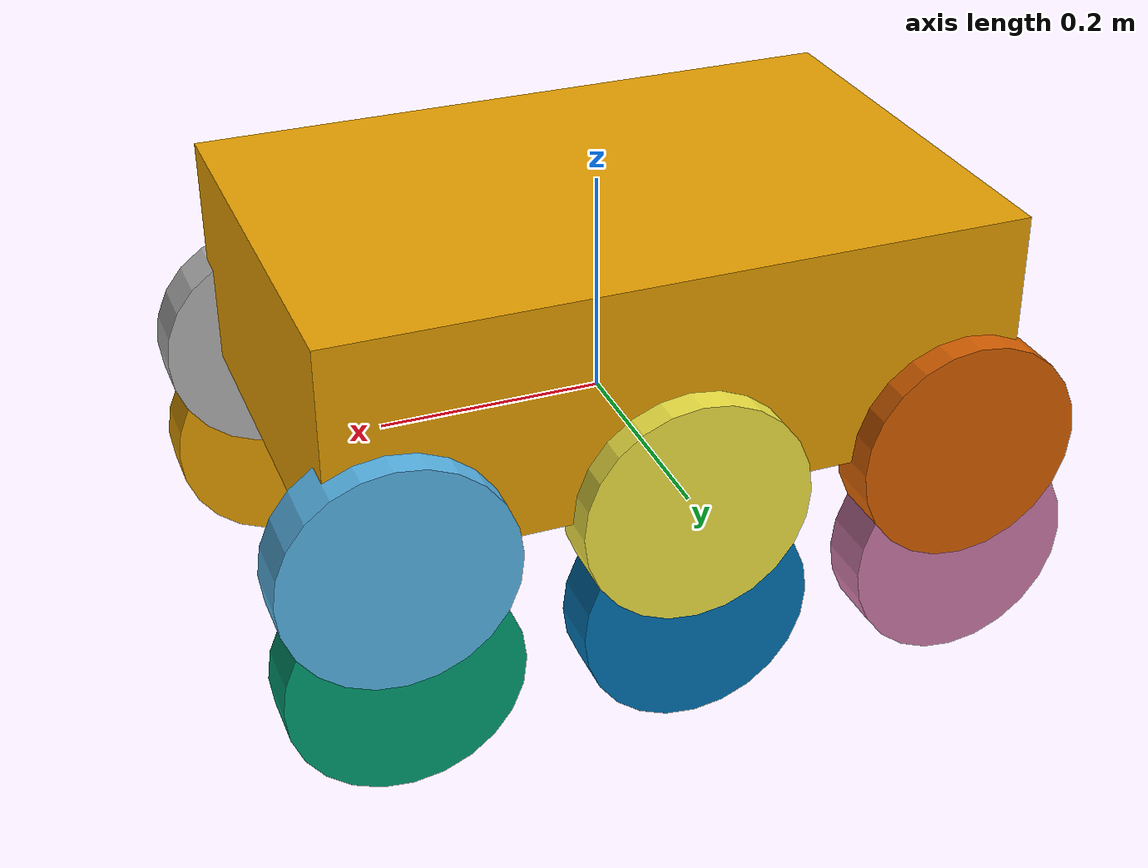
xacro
<?xml version="1.0"?>
<robot name="six_wheel_rover" xmlns:xacro="http://ros.org/wiki/xacro">

  <!-- Properties -->
  <xacro:property name="wheel_radius" value="0.1"/>
  <xacro:property name="wheel_width" value="0.05"/>
  <xacro:property name="wheel_base" value="0.5"/>
  <xacro:property name="track_width" value="0.4"/>

  <link name="base_link">
    <inertial>
      <origin xyz="0 0 0" rpy="0 0 0"/>
      <mass value="10.0"/>
      <inertia ixx="1" iyy="1" izz="1" ixy="0" ixz="0" iyz="0"/>
    </inertial>
    <visual>
      <geometry>
        <box size="0.6 0.4 0.2"/>
      </geometry>
      <origin xyz="0 0 0.1" rpy="0 0 0"/>
    </visual>
    <collision>
      <geometry>
        <box size="0.6 0.4 0.2"/>
      </geometry>
    </collision>
  </link>

  <!-- Macro for wheel -->
  <xacro:macro name="wheel" params="name parent x y steering">
    <!-- steering joint link -->
    <link name="${name}_link">
      <visual>
        <geometry>
          <cylinder radius="${wheel_radius}" length="${wheel_width}"/>
        </geometry>
        <origin xyz="0 0 0" rpy="1.5708 0 0"/>
      </visual>
      <collision>
        <geometry>
          <cylinder radius="${wheel_radius}" length="${wheel_width}"/>
        </geometry>
      </collision>
    </link>

    <joint name="${name}_steer_joint" type="${steering}">
      <parent link="${parent}"/>
      <child link="${name}_link"/>
      <origin xyz="${x} ${y} 0" rpy="0 0 0"/>
      <axis xyz="0 0 1"/>
      <limit effort="10" velocity="2.0" lower="-1.0" upper="1.0"/>
    </joint>

    <joint name="${name}_wheel_joint" type="continuous">
      <parent link="${name}_link"/>
      <child link="${name}_wheel"/>
      <origin xyz="0 0 -${wheel_radius}" rpy="0 0 0"/>
      <axis xyz="0 1 0"/>
    </joint>

    <link name="${name}_wheel">
      <visual>
        <geometry>
          <cylinder radius="${wheel_radius}" length="${wheel_width}"/>
        </geometry>
        <origin xyz="0 0 0" rpy="1.5708 0 0"/>
      </visual>
      <collision>
        <geometry>
          <cylinder radius="${wheel_radius}" length="${wheel_width}"/>
        </geometry>
      </collision>
    </link>
  </xacro:macro>

  <!-- Front left (steered) -->
  <xacro:wheel name="fl" parent="base_link"
               x="${wheel_base/2}" y="${track_width/2}" steering="revolute"/>
  <xacro:wheel name="ml" parent="base_link"
               x="0.0" y="${track_width/2}" steering="fixed"/>
  <xacro:wheel name="rl" parent="base_link"
               x="-${wheel_base/2}" y="${track_width/2}" steering="revolute"/>

  <!-- Right side (mirror) -->
  <xacro:wheel name="fr" parent="base_link"
               x="${wheel_base/2}" y="-${track_width/2}" steering="revolute"/>
  <xacro:wheel name="mr" parent="base_link"
               x="0.0" y="-${track_width/2}" steering="fixed"/>
  <xacro:wheel name="rr" parent="base_link"
               x="-${wheel_base/2}" y="-${track_width/2}" steering="revolute"/>

</robot>
